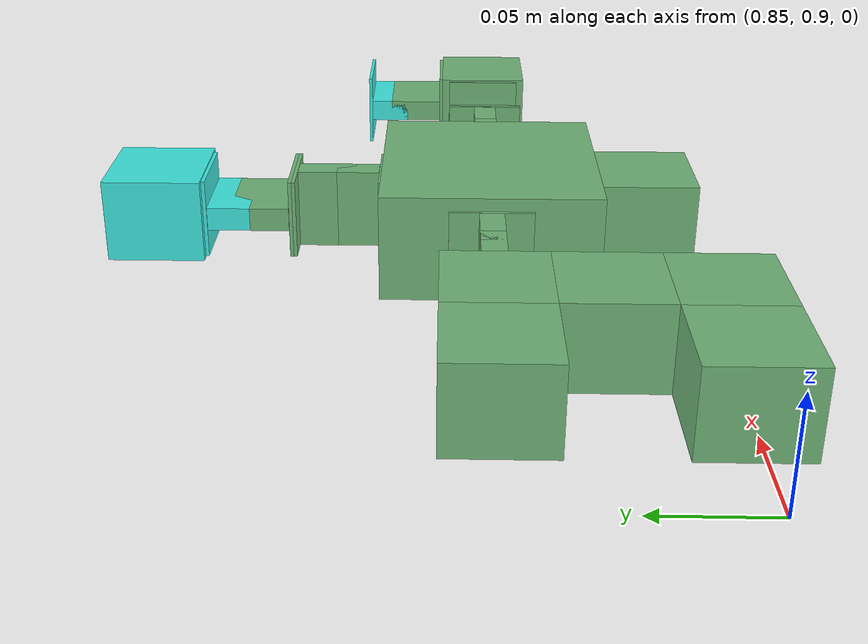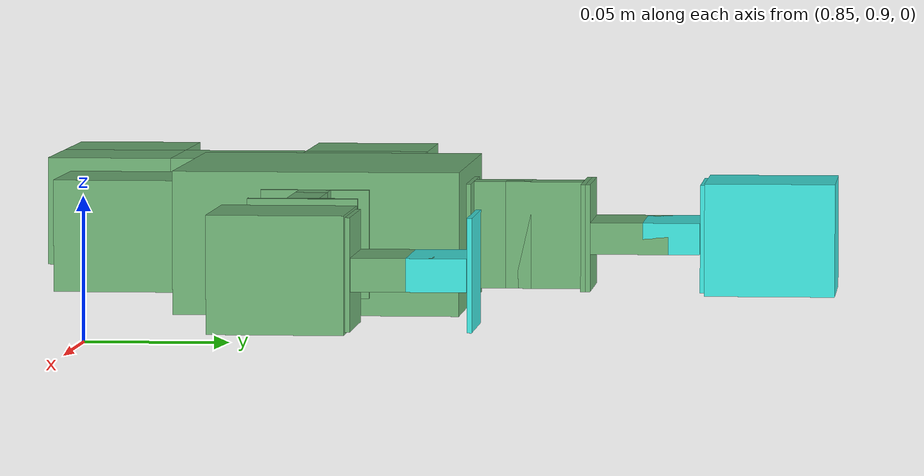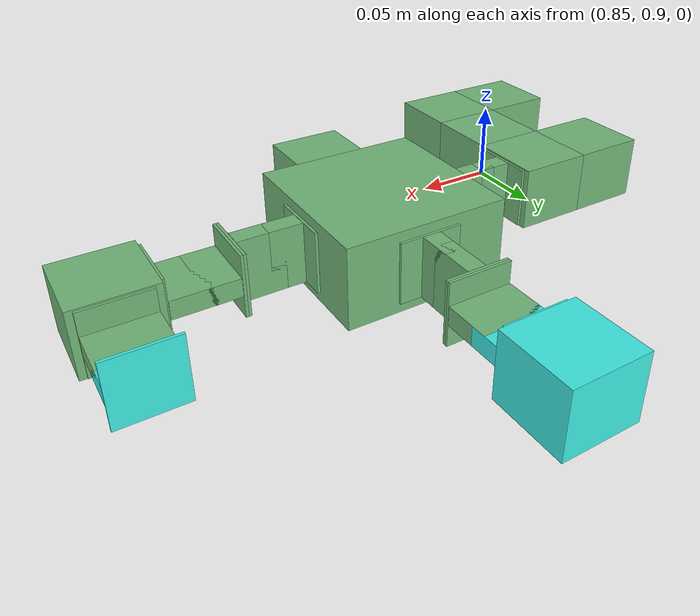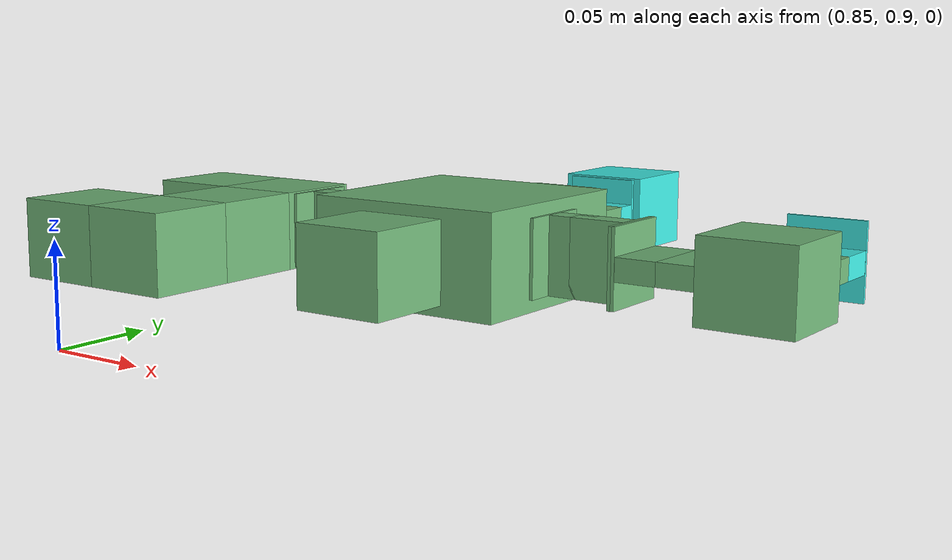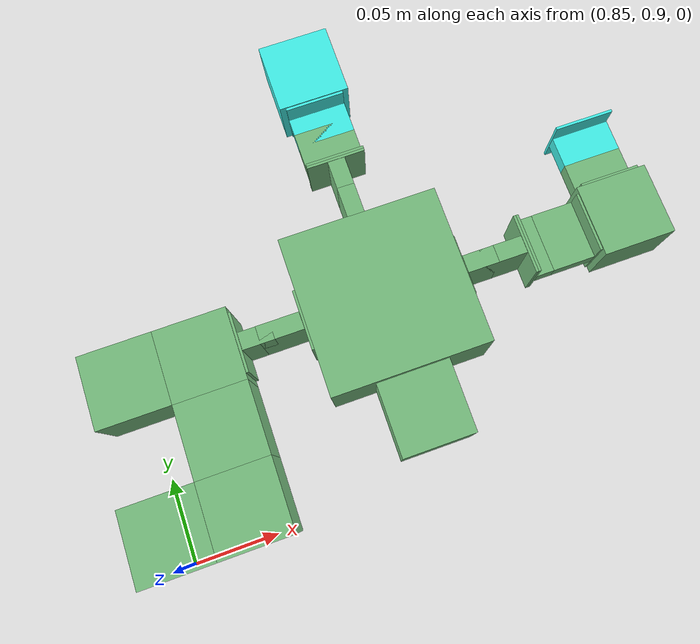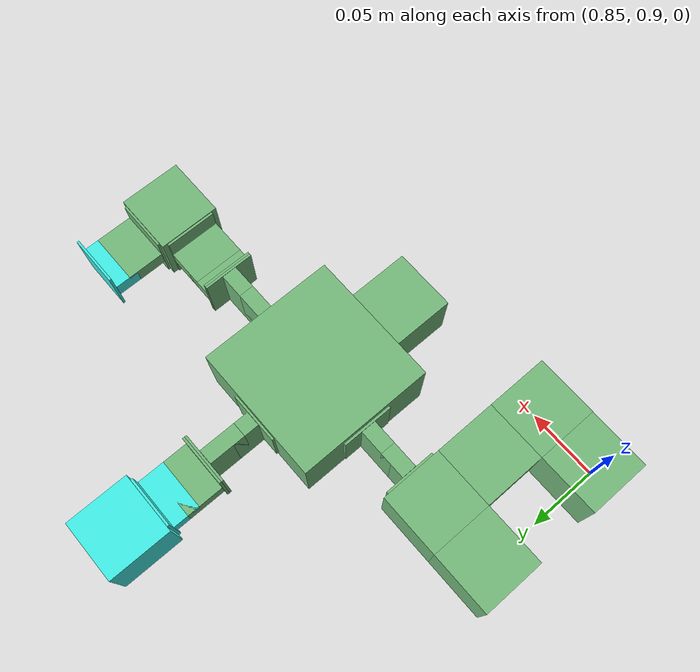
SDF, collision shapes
<?xml version="1.0"?>
<sdf version="1.5"><model name="gen__2"><pose>1.000000e+00 1.000000e+00 5.000000e-02 0.000000e+00 -0.000000e+00 0.000000e+00</pose>
<link name="link_component_node-0__box"><pose>-3.491176e-03 -2.120136e-03 -3.009157e-20 0.000000e+00 -0.000000e+00 0.000000e+00</pose>
<visual name="component_node-0__box_visual"><pose>3.491176e-03 2.120136e-03 3.009157e-20 0.000000e+00 -0.000000e+00 0.000000e+00</pose>
<material><ambient>0.45 0.72 0.48 1.00</ambient><diffuse>0.45 0.72 0.48 1.00</diffuse><specular>0.1 0.1 0.1 1.00</specular></material>
<geometry><mesh><uri>model://rg_robot/meshes/CoreComponent.dae</uri></mesh></geometry></visual>
<collision name="component_node-0__box_collision"><pose>3.491176e-03 2.120136e-03 3.009157e-20 0.000000e+00 -0.000000e+00 0.000000e+00</pose>
<surface><contact><ode><kd>3.333333e+06</kd><kp>9.000000e+04</kp></ode></contact>
<friction><ode><mu>1.000000e+00</mu>
<mu2>1.000000e+00</mu2>
<slip1>1.000000e-02</slip1>
<slip2>1.000000e-02</slip2></ode>
<bullet><friction>1.000000e+00</friction>
<friction2>1.000000e+00</friction2></bullet></friction></surface>
<geometry><box><size>9.000000e-02 9.000000e-02 4.500000e-02</size></box></geometry></collision>
<sensor type="imu" name="node-0-imu_sensor"><pose>3.491176e-03 2.120136e-03 3.009157e-20 0.000000e+00 -0.000000e+00 0.000000e+00</pose>
<update_rate>8.000000e+00</update_rate>
<always_on>1</always_on></sensor>
<visual name="component_node-1__box_visual"><pose>3.491176e-03 -6.337986e-02 3.009157e-20 0.000000e+00 -0.000000e+00 1.570796e+00</pose>
<material><ambient>0.50 0.65 0.96 1.00</ambient><diffuse>0.50 0.65 0.96 1.00</diffuse><specular>0.1 0.1 0.1 1.00</specular></material>
<geometry><mesh><uri>model://rg_robot/meshes/FixedBrick.dae</uri></mesh></geometry></visual>
<collision name="component_node-1__box_collision"><pose>3.491176e-03 -6.337986e-02 3.009157e-20 0.000000e+00 -0.000000e+00 1.570796e+00</pose>
<surface><contact><ode><kd>3.333333e+06</kd><kp>9.000000e+04</kp></ode></contact>
<friction><ode><mu>1.000000e+00</mu>
<mu2>1.000000e+00</mu2>
<slip1>1.000000e-02</slip1>
<slip2>1.000000e-02</slip2></ode>
<bullet><friction>1.000000e+00</friction>
<friction2>1.000000e+00</friction2></bullet></friction></surface>
<geometry><box><size>4.100000e-02 4.100000e-02 3.550000e-02</size></box></geometry></collision>
<visual name="component_node-2__root_visual"><pose>3.491176e-03 4.787014e-02 -1.364419e-19 1.570796e+00 3.330669e-16 1.570796e+00</pose>
<material><ambient>0.45 0.72 0.48 1.00</ambient><diffuse>0.45 0.72 0.48 1.00</diffuse><specular>0.1 0.1 0.1 1.00</specular></material>
<geometry><box><size>1.500000e-03 3.400000e-02 3.400000e-02</size></box></geometry></visual>
<collision name="component_node-2__root_collision"><pose>3.491176e-03 4.787014e-02 -1.364419e-19 1.570796e+00 3.330669e-16 1.570796e+00</pose>
<surface><contact><ode><kd>3.333333e+06</kd><kp>9.000000e+04</kp></ode></contact>
<friction><ode><mu>1.000000e+00</mu>
<mu2>1.000000e+00</mu2>
<slip1>1.000000e-02</slip1>
<slip2>1.000000e-02</slip2></ode>
<bullet><friction>1.000000e+00</friction>
<friction2>1.000000e+00</friction2></bullet></friction></surface>
<geometry><box><size>1.500000e-03 3.400000e-02 3.400000e-02</size></box></geometry></collision>
<visual name="component_node-2__frame_frame_visual"><pose>3.491176e-03 5.772014e-02 -2.323581e-18 1.570796e+00 3.330669e-16 1.570796e+00</pose>
<material><ambient>0.45 0.72 0.48 1.00</ambient><diffuse>0.45 0.72 0.48 1.00</diffuse><specular>0.1 0.1 0.1 1.00</specular></material>
<geometry><mesh><uri>model://rg_robot/meshes/ActiveHinge_Frame.dae</uri></mesh></geometry></visual>
<collision name="component_node-2__frame_collision"><pose>3.491176e-03 5.772014e-02 -2.323581e-18 1.570796e+00 3.330669e-16 1.570796e+00</pose>
<surface><contact><ode><kd>3.333333e+06</kd><kp>9.000000e+04</kp></ode></contact>
<friction><ode><mu>1.000000e+00</mu>
<mu2>1.000000e+00</mu2>
<slip1>1.000000e-02</slip1>
<slip2>1.000000e-02</slip2></ode>
<bullet><friction>1.000000e+00</friction>
<friction2>1.000000e+00</friction2></bullet></friction></surface>
<geometry><box><size>1.800000e-02 3.400000e-02 1.000000e-02</size></box></geometry></collision>
<visual name="component_node-5__root_visual"><pose>4.924118e-02 2.120136e-03 3.009157e-20 -1.570796e+00 0.000000e+00 0.000000e+00</pose>
<material><ambient>0.45 0.72 0.48 1.00</ambient><diffuse>0.45 0.72 0.48 1.00</diffuse><specular>0.1 0.1 0.1 1.00</specular></material>
<geometry><box><size>1.500000e-03 3.400000e-02 3.400000e-02</size></box></geometry></visual>
<collision name="component_node-5__root_collision"><pose>4.924118e-02 2.120136e-03 3.009157e-20 -1.570796e+00 0.000000e+00 0.000000e+00</pose>
<surface><contact><ode><kd>3.333333e+06</kd><kp>9.000000e+04</kp></ode></contact>
<friction><ode><mu>1.000000e+00</mu>
<mu2>1.000000e+00</mu2>
<slip1>1.000000e-02</slip1>
<slip2>1.000000e-02</slip2></ode>
<bullet><friction>1.000000e+00</friction>
<friction2>1.000000e+00</friction2></bullet></friction></surface>
<geometry><box><size>1.500000e-03 3.400000e-02 3.400000e-02</size></box></geometry></collision>
<visual name="component_node-5__frame_frame_visual"><pose>5.909118e-02 2.120136e-03 3.009157e-20 -1.570796e+00 0.000000e+00 0.000000e+00</pose>
<material><ambient>0.45 0.72 0.48 1.00</ambient><diffuse>0.45 0.72 0.48 1.00</diffuse><specular>0.1 0.1 0.1 1.00</specular></material>
<geometry><mesh><uri>model://rg_robot/meshes/ActiveHinge_Frame.dae</uri></mesh></geometry></visual>
<collision name="component_node-5__frame_collision"><pose>5.909118e-02 2.120136e-03 3.009157e-20 -1.570796e+00 0.000000e+00 0.000000e+00</pose>
<surface><contact><ode><kd>3.333333e+06</kd><kp>9.000000e+04</kp></ode></contact>
<friction><ode><mu>1.000000e+00</mu>
<mu2>1.000000e+00</mu2>
<slip1>1.000000e-02</slip1>
<slip2>1.000000e-02</slip2></ode>
<bullet><friction>1.000000e+00</friction>
<friction2>1.000000e+00</friction2></bullet></friction></surface>
<geometry><box><size>1.800000e-02 3.400000e-02 1.000000e-02</size></box></geometry></collision>
<collision name="component_node-9__tail_collision"><pose>-4.225882e-02 2.120136e-03 3.009157e-20 1.570796e+00 -0.000000e+00 0.000000e+00</pose>
<surface><contact><ode><kd>3.333333e+06</kd><kp>9.000000e+04</kp></ode></contact>
<friction><ode><mu>1.000000e+00</mu>
<mu2>1.000000e+00</mu2>
<slip1>1.000000e-02</slip1>
<slip2>1.000000e-02</slip2></ode>
<bullet><friction>1.000000e+00</friction>
<friction2>1.000000e+00</friction2></bullet></friction></surface>
<geometry><box><size>1.500000e-03 3.400000e-02 3.400000e-02</size></box></geometry></collision>
<visual name="component_node-9__servo_servo_visual"><pose>-5.535882e-02 2.120136e-03 3.009157e-20 1.570796e+00 -0.000000e+00 0.000000e+00</pose>
<material><ambient>0.45 0.72 0.48 1.00</ambient><diffuse>0.45 0.72 0.48 1.00</diffuse><specular>0.1 0.1 0.1 1.00</specular></material>
<geometry><mesh><uri>model://rg_robot/meshes/ActiveCardanHinge_Servo_Holder.dae</uri></mesh></geometry></visual>
<collision name="component_node-9__servo_collision"><pose>-5.535882e-02 2.120136e-03 3.009157e-20 1.570796e+00 -0.000000e+00 0.000000e+00</pose>
<surface><contact><ode><kd>3.333333e+06</kd><kp>9.000000e+04</kp></ode></contact>
<friction><ode><mu>1.000000e+00</mu>
<mu2>1.000000e+00</mu2>
<slip1>1.000000e-02</slip1>
<slip2>1.000000e-02</slip2></ode>
<bullet><friction>1.000000e+00</friction>
<friction2>1.000000e+00</friction2></bullet></friction></surface>
<geometry><box><size>2.450000e-02 3.400000e-02 1.000000e-02</size></box></geometry></collision>
<inertial><mass>1.326000e-01</mass><inertia><ixx>1.445517e-04</ixx><ixy>9.814744e-07</ixy><ixz>-7.751277e-23</ixz><iyy>1.452945e-04</iyy><iyz>1.920606e-22</iyz><izz>2.510864e-04</izz></inertia></inertial>
<self_collide>True</self_collide></link>
<link name="link_component_node-2__servo"><pose>5.003566e-35 8.270000e-02 -8.371082e-18 0.000000e+00 -0.000000e+00 0.000000e+00</pose>
<visual name="component_node-2__servo_servo_visual"><pose>-5.003566e-35 -1.385000e-02 3.075318e-18 1.570796e+00 3.330669e-16 1.570796e+00</pose>
<material><ambient>0.45 0.72 0.48 1.00</ambient><diffuse>0.45 0.72 0.48 1.00</diffuse><specular>0.1 0.1 0.1 1.00</specular></material>
<geometry><mesh><uri>model://rg_robot/meshes/ActiveCardanHinge_Servo_Holder.dae</uri></mesh></geometry></visual>
<collision name="component_node-2__servo_collision"><pose>-5.003566e-35 -1.385000e-02 3.075318e-18 1.570796e+00 3.330669e-16 1.570796e+00</pose>
<surface><contact><ode><kd>3.333333e+06</kd><kp>9.000000e+04</kp></ode></contact>
<friction><ode><mu>1.000000e+00</mu>
<mu2>1.000000e+00</mu2>
<slip1>1.000000e-02</slip1>
<slip2>1.000000e-02</slip2></ode>
<bullet><friction>1.000000e+00</friction>
<friction2>1.000000e+00</friction2></bullet></friction></surface>
<geometry><box><size>2.450000e-02 3.400000e-02 1.000000e-02</size></box></geometry></collision>
<collision name="component_node-2__tail_collision"><pose>-5.003566e-35 -7.500000e-04 1.665335e-19 1.570796e+00 3.330669e-16 1.570796e+00</pose>
<surface><contact><ode><kd>3.333333e+06</kd><kp>9.000000e+04</kp></ode></contact>
<friction><ode><mu>1.000000e+00</mu>
<mu2>1.000000e+00</mu2>
<slip1>1.000000e-02</slip1>
<slip2>1.000000e-02</slip2></ode>
<bullet><friction>1.000000e+00</friction>
<friction2>1.000000e+00</friction2></bullet></friction></surface>
<geometry><box><size>1.500000e-03 3.400000e-02 3.400000e-02</size></box></geometry></collision>
<collision name="component_node-3__tail_collision"><pose>-4.079120e-35 7.500000e-04 -1.665335e-19 3.141593e+00 -2.220446e-16 -1.570796e+00</pose>
<surface><contact><ode><kd>3.333333e+06</kd><kp>9.000000e+04</kp></ode></contact>
<friction><ode><mu>1.000000e+00</mu>
<mu2>1.000000e+00</mu2>
<slip1>1.000000e-02</slip1>
<slip2>1.000000e-02</slip2></ode>
<bullet><friction>1.000000e+00</friction>
<friction2>1.000000e+00</friction2></bullet></friction></surface>
<geometry><box><size>1.500000e-03 3.400000e-02 3.400000e-02</size></box></geometry></collision>
<visual name="component_node-3__servo_servo_visual"><pose>1.206788e-34 1.385000e-02 -3.075318e-18 3.141593e+00 -2.220446e-16 -1.570796e+00</pose>
<material><ambient>0.25 0.93 0.90 1.00</ambient><diffuse>0.25 0.93 0.90 1.00</diffuse><specular>0.1 0.1 0.1 1.00</specular></material>
<geometry><mesh><uri>model://rg_robot/meshes/ActiveCardanHinge_Servo_Holder.dae</uri></mesh></geometry></visual>
<collision name="component_node-3__servo_collision"><pose>1.206788e-34 1.385000e-02 -3.075318e-18 3.141593e+00 -2.220446e-16 -1.570796e+00</pose>
<surface><contact><ode><kd>3.333333e+06</kd><kp>9.000000e+04</kp></ode></contact>
<friction><ode><mu>1.000000e+00</mu>
<mu2>1.000000e+00</mu2>
<slip1>1.000000e-02</slip1>
<slip2>1.000000e-02</slip2></ode>
<bullet><friction>1.000000e+00</friction>
<friction2>1.000000e+00</friction2></bullet></friction></surface>
<geometry><box><size>2.450000e-02 3.400000e-02 1.000000e-02</size></box></geometry></collision>
<inertial><mass>3.200000e-02</mass><inertia><ixx>6.654347e-06</ixx><ixy>-2.543151e-22</ixy><ixz>-2.212489e-22</ixz><iyy>4.581333e-06</iyy><iyz>2.059863e-22</iyz><izz>6.654347e-06</izz></inertia></inertial>
<self_collide>True</self_collide></link>
<link name="link_component_node-3__frame"><pose>4.526505e-34 1.307875e-01 -1.295676e-17 0.000000e+00 -0.000000e+00 0.000000e+00</pose>
<visual name="component_node-3__frame_frame_visual"><pose>-1.186172e-34 -2.098750e-02 -1.431730e-18 3.141593e+00 -2.220446e-16 -1.570796e+00</pose>
<material><ambient>0.25 0.93 0.90 1.00</ambient><diffuse>0.25 0.93 0.90 1.00</diffuse><specular>0.1 0.1 0.1 1.00</specular></material>
<geometry><mesh><uri>model://rg_robot/meshes/ActiveHinge_Frame.dae</uri></mesh></geometry></visual>
<collision name="component_node-3__frame_collision"><pose>-1.186172e-34 -2.098750e-02 -1.431730e-18 3.141593e+00 -2.220446e-16 -1.570796e+00</pose>
<surface><contact><ode><kd>3.333333e+06</kd><kp>9.000000e+04</kp></ode></contact>
<friction><ode><mu>1.000000e+00</mu>
<mu2>1.000000e+00</mu2>
<slip1>1.000000e-02</slip1>
<slip2>1.000000e-02</slip2></ode>
<bullet><friction>1.000000e+00</friction>
<friction2>1.000000e+00</friction2></bullet></friction></surface>
<geometry><box><size>1.800000e-02 3.400000e-02 1.000000e-02</size></box></geometry></collision>
<visual name="component_node-3__root_visual"><pose>2.793436e-36 -1.113750e-02 -3.618869e-18 3.141593e+00 -2.220446e-16 -1.570796e+00</pose>
<material><ambient>0.25 0.93 0.90 1.00</ambient><diffuse>0.25 0.93 0.90 1.00</diffuse><specular>0.1 0.1 0.1 1.00</specular></material>
<geometry><box><size>1.500000e-03 3.400000e-02 3.400000e-02</size></box></geometry></visual>
<collision name="component_node-3__root_collision"><pose>2.793436e-36 -1.113750e-02 -3.618869e-18 3.141593e+00 -2.220446e-16 -1.570796e+00</pose>
<surface><contact><ode><kd>3.333333e+06</kd><kp>9.000000e+04</kp></ode></contact>
<friction><ode><mu>1.000000e+00</mu>
<mu2>1.000000e+00</mu2>
<slip1>1.000000e-02</slip1>
<slip2>1.000000e-02</slip2></ode>
<bullet><friction>1.000000e+00</friction>
<friction2>1.000000e+00</friction2></bullet></friction></surface>
<geometry><box><size>1.500000e-03 3.400000e-02 3.400000e-02</size></box></geometry></collision>
<visual name="component_node-4__box_visual"><pose>1.203790e-35 1.011250e-02 2.651976e-18 -3.140185e-16 3.140185e-16 -1.570796e+00</pose>
<material><ambient>0.50 0.65 0.96 1.00</ambient><diffuse>0.50 0.65 0.96 1.00</diffuse><specular>0.1 0.1 0.1 1.00</specular></material>
<geometry><mesh><uri>model://rg_robot/meshes/FixedBrick.dae</uri></mesh></geometry></visual>
<collision name="component_node-4__box_collision"><pose>1.203790e-35 1.011250e-02 2.651976e-18 -3.140185e-16 3.140185e-16 -1.570796e+00</pose>
<surface><contact><ode><kd>3.333333e+06</kd><kp>9.000000e+04</kp></ode></contact>
<friction><ode><mu>1.000000e+00</mu>
<mu2>1.000000e+00</mu2>
<slip1>1.000000e-02</slip1>
<slip2>1.000000e-02</slip2></ode>
<bullet><friction>1.000000e+00</friction>
<friction2>1.000000e+00</friction2></bullet></friction></surface>
<geometry><box><size>4.100000e-02 4.100000e-02 3.550000e-02</size></box></geometry></collision>
<inertial><mass>1.840000e-02</mass><inertia><ixx>5.658065e-06</ixx><ixy>-2.587799e-37</ixy><ixz>1.123048e-22</ixz><iyy>3.974329e-06</iyy><iyz>-8.485106e-22</iyz><izz>6.121302e-06</izz></inertia></inertial>
<self_collide>True</self_collide></link>
<joint type="revolute" name="joint_link_component_node-2__servo_link_component_node-3__frame"><pose>-1.802469e-34 -2.598750e-02 -3.215068e-19 3.141593e+00 -2.220446e-16 -1.570796e+00</pose>
<parent>link_component_node-2__servo</parent>
<child>link_component_node-3__frame</child>
<axis><xyz>0.000000e+00 1.000000e+00 0.000000e+00</xyz>
<use_parent_model_frame>0</use_parent_model_frame>
<limit><lower>-7.853982e-01</lower>
<upper>7.853982e-01</upper>
<effort>1.765800e-01</effort>
<velocity>5.235988e+00</velocity></limit></axis></joint>
<joint type="revolute" name="joint_link_component_node-2__servo_link_component_node-0__box"><pose>3.491176e-03 6.272014e-02 -3.433804e-18 1.570796e+00 2.220446e-16 1.570796e+00</pose>
<parent>link_component_node-2__servo</parent>
<child>link_component_node-0__box</child>
<axis><xyz>0.000000e+00 1.000000e+00 0.000000e+00</xyz>
<use_parent_model_frame>0</use_parent_model_frame>
<limit><lower>-7.853982e-01</lower>
<upper>7.853982e-01</upper>
<effort>1.765800e-01</effort>
<velocity>5.235988e+00</velocity></limit></axis></joint>
<link name="link_component_node-5__servo"><pose>7.807479e-02 0.000000e+00 0.000000e+00 0.000000e+00 -0.000000e+00 0.000000e+00</pose>
<visual name="component_node-5__servo_servo_visual"><pose>-9.224793e-03 0.000000e+00 0.000000e+00 -1.570796e+00 0.000000e+00 0.000000e+00</pose>
<material><ambient>0.45 0.72 0.48 1.00</ambient><diffuse>0.45 0.72 0.48 1.00</diffuse><specular>0.1 0.1 0.1 1.00</specular></material>
<geometry><mesh><uri>model://rg_robot/meshes/ActiveCardanHinge_Servo_Holder.dae</uri></mesh></geometry></visual>
<collision name="component_node-5__servo_collision"><pose>-9.224793e-03 0.000000e+00 0.000000e+00 -1.570796e+00 0.000000e+00 0.000000e+00</pose>
<surface><contact><ode><kd>3.333333e+06</kd><kp>9.000000e+04</kp></ode></contact>
<friction><ode><mu>1.000000e+00</mu>
<mu2>1.000000e+00</mu2>
<slip1>1.000000e-02</slip1>
<slip2>1.000000e-02</slip2></ode>
<bullet><friction>1.000000e+00</friction>
<friction2>1.000000e+00</friction2></bullet></friction></surface>
<geometry><box><size>2.450000e-02 3.400000e-02 1.000000e-02</size></box></geometry></collision>
<collision name="component_node-5__tail_collision"><pose>3.875207e-03 0.000000e+00 0.000000e+00 -1.570796e+00 0.000000e+00 0.000000e+00</pose>
<surface><contact><ode><kd>3.333333e+06</kd><kp>9.000000e+04</kp></ode></contact>
<friction><ode><mu>1.000000e+00</mu>
<mu2>1.000000e+00</mu2>
<slip1>1.000000e-02</slip1>
<slip2>1.000000e-02</slip2></ode>
<bullet><friction>1.000000e+00</friction>
<friction2>1.000000e+00</friction2></bullet></friction></surface>
<geometry><box><size>1.500000e-03 3.400000e-02 3.400000e-02</size></box></geometry></collision>
<visual name="component_node-6__root_visual"><pose>5.375207e-03 0.000000e+00 0.000000e+00 3.141593e+00 -0.000000e+00 0.000000e+00</pose>
<material><ambient>0.45 0.72 0.48 1.00</ambient><diffuse>0.45 0.72 0.48 1.00</diffuse><specular>0.1 0.1 0.1 1.00</specular></material>
<geometry><box><size>1.500000e-03 3.400000e-02 3.400000e-02</size></box></geometry></visual>
<collision name="component_node-6__root_collision"><pose>5.375207e-03 0.000000e+00 0.000000e+00 3.141593e+00 -0.000000e+00 0.000000e+00</pose>
<surface><contact><ode><kd>3.333333e+06</kd><kp>9.000000e+04</kp></ode></contact>
<friction><ode><mu>1.000000e+00</mu>
<mu2>1.000000e+00</mu2>
<slip1>1.000000e-02</slip1>
<slip2>1.000000e-02</slip2></ode>
<bullet><friction>1.000000e+00</friction>
<friction2>1.000000e+00</friction2></bullet></friction></surface>
<geometry><box><size>1.500000e-03 3.400000e-02 3.400000e-02</size></box></geometry></collision>
<visual name="component_node-6__frame_frame_visual"><pose>1.522521e-02 0.000000e+00 0.000000e+00 3.141593e+00 -0.000000e+00 0.000000e+00</pose>
<material><ambient>0.45 0.72 0.48 1.00</ambient><diffuse>0.45 0.72 0.48 1.00</diffuse><specular>0.1 0.1 0.1 1.00</specular></material>
<geometry><mesh><uri>model://rg_robot/meshes/ActiveHinge_Frame.dae</uri></mesh></geometry></visual>
<collision name="component_node-6__frame_collision"><pose>1.522521e-02 0.000000e+00 0.000000e+00 3.141593e+00 -0.000000e+00 0.000000e+00</pose>
<surface><contact><ode><kd>3.333333e+06</kd><kp>9.000000e+04</kp></ode></contact>
<friction><ode><mu>1.000000e+00</mu>
<mu2>1.000000e+00</mu2>
<slip1>1.000000e-02</slip1>
<slip2>1.000000e-02</slip2></ode>
<bullet><friction>1.000000e+00</friction>
<friction2>1.000000e+00</friction2></bullet></friction></surface>
<geometry><box><size>1.800000e-02 3.400000e-02 1.000000e-02</size></box></geometry></collision>
<inertial><mass>2.420000e-02</mass><inertia><ixx>3.764933e-06</ixx><ixy>0.000000e+00</ixy><ixz>0.000000e+00</ixz><iyy>4.062289e-06</iyy><iyz>-2.579270e-22</iyz><izz>3.375889e-06</izz></inertia></inertial>
<self_collide>True</self_collide></link>
<link name="link_component_node-6__servo"><pose>1.300493e-01 1.085071e-02 -1.096620e-17 0.000000e+00 -0.000000e+00 0.000000e+00</pose>
<visual name="component_node-6__servo_servo_visual"><pose>-2.349929e-02 -1.085071e-02 1.096620e-17 3.141593e+00 -0.000000e+00 0.000000e+00</pose>
<material><ambient>0.45 0.72 0.48 1.00</ambient><diffuse>0.45 0.72 0.48 1.00</diffuse><specular>0.1 0.1 0.1 1.00</specular></material>
<geometry><mesh><uri>model://rg_robot/meshes/ActiveCardanHinge_Servo_Holder.dae</uri></mesh></geometry></visual>
<collision name="component_node-6__servo_collision"><pose>-2.349929e-02 -1.085071e-02 1.096620e-17 3.141593e+00 -0.000000e+00 0.000000e+00</pose>
<surface><contact><ode><kd>3.333333e+06</kd><kp>9.000000e+04</kp></ode></contact>
<friction><ode><mu>1.000000e+00</mu>
<mu2>1.000000e+00</mu2>
<slip1>1.000000e-02</slip1>
<slip2>1.000000e-02</slip2></ode>
<bullet><friction>1.000000e+00</friction>
<friction2>1.000000e+00</friction2></bullet></friction></surface>
<geometry><box><size>2.450000e-02 3.400000e-02 1.000000e-02</size></box></geometry></collision>
<collision name="component_node-6__tail_collision"><pose>-1.039929e-02 -1.085071e-02 1.096620e-17 3.141593e+00 -0.000000e+00 0.000000e+00</pose>
<surface><contact><ode><kd>3.333333e+06</kd><kp>9.000000e+04</kp></ode></contact>
<friction><ode><mu>1.000000e+00</mu>
<mu2>1.000000e+00</mu2>
<slip1>1.000000e-02</slip1>
<slip2>1.000000e-02</slip2></ode>
<bullet><friction>1.000000e+00</friction>
<friction2>1.000000e+00</friction2></bullet></friction></surface>
<geometry><box><size>1.500000e-03 3.400000e-02 3.400000e-02</size></box></geometry></collision>
<visual name="component_node-7__box_visual"><pose>1.085071e-02 -1.085071e-02 1.096620e-17 1.010643e-15 -0.000000e+00 3.141593e+00</pose>
<material><ambient>0.25 0.93 0.90 1.00</ambient><diffuse>0.25 0.93 0.90 1.00</diffuse><specular>0.1 0.1 0.1 1.00</specular></material>
<geometry><mesh><uri>model://rg_robot/meshes/FixedBrick.dae</uri></mesh></geometry></visual>
<collision name="component_node-7__box_collision"><pose>1.085071e-02 -1.085071e-02 1.096620e-17 1.010643e-15 -0.000000e+00 3.141593e+00</pose>
<surface><contact><ode><kd>3.333333e+06</kd><kp>9.000000e+04</kp></ode></contact>
<friction><ode><mu>1.000000e+00</mu>
<mu2>1.000000e+00</mu2>
<slip1>1.000000e-02</slip1>
<slip2>1.000000e-02</slip2></ode>
<bullet><friction>1.000000e+00</friction>
<friction2>1.000000e+00</friction2></bullet></friction></surface>
<geometry><box><size>4.100000e-02 4.100000e-02 3.550000e-02</size></box></geometry></collision>
<collision name="component_node-8__tail_collision"><pose>1.085071e-02 1.039929e-02 -1.050997e-17 -3.141593e+00 -1.010643e-15 -1.570796e+00</pose>
<surface><contact><ode><kd>3.333333e+06</kd><kp>9.000000e+04</kp></ode></contact>
<friction><ode><mu>1.000000e+00</mu>
<mu2>1.000000e+00</mu2>
<slip1>1.000000e-02</slip1>
<slip2>1.000000e-02</slip2></ode>
<bullet><friction>1.000000e+00</friction>
<friction2>1.000000e+00</friction2></bullet></friction></surface>
<geometry><box><size>1.500000e-03 3.400000e-02 3.400000e-02</size></box></geometry></collision>
<visual name="component_node-8__servo_servo_visual"><pose>1.085071e-02 2.349929e-02 -2.374939e-17 -3.141593e+00 -1.010643e-15 -1.570796e+00</pose>
<material><ambient>0.25 0.93 0.90 1.00</ambient><diffuse>0.25 0.93 0.90 1.00</diffuse><specular>0.1 0.1 0.1 1.00</specular></material>
<geometry><mesh><uri>model://rg_robot/meshes/ActiveCardanHinge_Servo_Holder.dae</uri></mesh></geometry></visual>
<collision name="component_node-8__servo_collision"><pose>1.085071e-02 2.349929e-02 -2.374939e-17 -3.141593e+00 -1.010643e-15 -1.570796e+00</pose>
<surface><contact><ode><kd>3.333333e+06</kd><kp>9.000000e+04</kp></ode></contact>
<friction><ode><mu>1.000000e+00</mu>
<mu2>1.000000e+00</mu2>
<slip1>1.000000e-02</slip1>
<slip2>1.000000e-02</slip2></ode>
<bullet><friction>1.000000e+00</friction>
<friction2>1.000000e+00</friction2></bullet></friction></surface>
<geometry><box><size>2.450000e-02 3.400000e-02 1.000000e-02</size></box></geometry></collision>
<inertial><mass>4.220000e-02</mass><inertia><ixx>1.480326e-05</ixx><ixy>-4.968541e-06</ixy><ixz>4.924429e-21</ixz><iyy>1.480326e-05</iyy><iyz>9.669361e-21</iyz><izz>2.446677e-05</izz></inertia></inertial>
<self_collide>True</self_collide></link>
<link name="link_component_node-8__frame"><pose>1.409000e-01 5.600854e-02 -5.660464e-17 0.000000e+00 -0.000000e+00 0.000000e+00</pose>
<visual name="component_node-8__frame_frame_visual"><pose>0.000000e+00 -8.408537e-03 8.498029e-18 -3.141593e+00 -1.010643e-15 -1.570796e+00</pose>
<material><ambient>0.25 0.93 0.90 1.00</ambient><diffuse>0.25 0.93 0.90 1.00</diffuse><specular>0.1 0.1 0.1 1.00</specular></material>
<geometry><mesh><uri>model://rg_robot/meshes/ActiveHinge_Frame.dae</uri></mesh></geometry></visual>
<collision name="component_node-8__frame_collision"><pose>0.000000e+00 -8.408537e-03 8.498029e-18 -3.141593e+00 -1.010643e-15 -1.570796e+00</pose>
<surface><contact><ode><kd>3.333333e+06</kd><kp>9.000000e+04</kp></ode></contact>
<friction><ode><mu>1.000000e+00</mu>
<mu2>1.000000e+00</mu2>
<slip1>1.000000e-02</slip1>
<slip2>1.000000e-02</slip2></ode>
<bullet><friction>1.000000e+00</friction>
<friction2>1.000000e+00</friction2></bullet></friction></surface>
<geometry><box><size>1.800000e-02 3.400000e-02 1.000000e-02</size></box></geometry></collision>
<visual name="component_node-8__root_visual"><pose>0.000000e+00 1.441463e-03 -1.456805e-18 -3.141593e+00 -1.010643e-15 -1.570796e+00</pose>
<material><ambient>0.25 0.93 0.90 1.00</ambient><diffuse>0.25 0.93 0.90 1.00</diffuse><specular>0.1 0.1 0.1 1.00</specular></material>
<geometry><box><size>1.500000e-03 3.400000e-02 3.400000e-02</size></box></geometry></visual>
<collision name="component_node-8__root_collision"><pose>0.000000e+00 1.441463e-03 -1.456805e-18 -3.141593e+00 -1.010643e-15 -1.570796e+00</pose>
<surface><contact><ode><kd>3.333333e+06</kd><kp>9.000000e+04</kp></ode></contact>
<friction><ode><mu>1.000000e+00</mu>
<mu2>1.000000e+00</mu2>
<slip1>1.000000e-02</slip1>
<slip2>1.000000e-02</slip2></ode>
<bullet><friction>1.000000e+00</friction>
<friction2>1.000000e+00</friction2></bullet></friction></surface>
<geometry><box><size>1.500000e-03 3.400000e-02 3.400000e-02</size></box></geometry></collision>
<inertial><mass>8.200000e-03</mass><inertia><ixx>8.174347e-07</ixx><ixy>6.017547e-37</ixy><ixz>-1.293227e-23</ixz><iyy>1.474267e-06</iyy><iyz>-5.570987e-22</iyz><izz>9.230347e-07</izz></inertia></inertial>
<self_collide>True</self_collide></link>
<joint type="revolute" name="joint_link_component_node-6__servo_link_component_node-8__frame"><pose>-1.604917e-33 -1.340854e-02 1.355124e-17 -3.141593e+00 -1.010643e-15 -1.570796e+00</pose>
<parent>link_component_node-6__servo</parent>
<child>link_component_node-8__frame</child>
<axis><xyz>0.000000e+00 1.000000e+00 0.000000e+00</xyz>
<use_parent_model_frame>0</use_parent_model_frame>
<limit><lower>-7.853982e-01</lower>
<upper>7.853982e-01</upper>
<effort>1.765800e-01</effort>
<velocity>5.235988e+00</velocity></limit></axis></joint>
<joint type="revolute" name="joint_link_component_node-6__servo_link_component_node-5__servo"><pose>2.022521e-02 0.000000e+00 0.000000e+00 3.141593e+00 -0.000000e+00 0.000000e+00</pose>
<parent>link_component_node-6__servo</parent>
<child>link_component_node-5__servo</child>
<axis><xyz>0.000000e+00 1.000000e+00 0.000000e+00</xyz>
<use_parent_model_frame>0</use_parent_model_frame>
<limit><lower>-7.853982e-01</lower>
<upper>7.853982e-01</upper>
<effort>1.765800e-01</effort>
<velocity>5.235988e+00</velocity></limit></axis></joint>
<joint type="revolute" name="joint_link_component_node-5__servo_link_component_node-0__box"><pose>6.409118e-02 2.120136e-03 3.009157e-20 -1.570796e+00 0.000000e+00 0.000000e+00</pose>
<parent>link_component_node-5__servo</parent>
<child>link_component_node-0__box</child>
<axis><xyz>0.000000e+00 1.000000e+00 0.000000e+00</xyz>
<use_parent_model_frame>0</use_parent_model_frame>
<limit><lower>-7.853982e-01</lower>
<upper>7.853982e-01</upper>
<effort>1.765800e-01</effort>
<velocity>5.235988e+00</velocity></limit></axis></joint>
<link name="link_component_node-9__frame"><pose>-1.141853e-01 -3.532095e-02 -2.082768e-17 0.000000e+00 -0.000000e+00 0.000000e+00</pose>
<visual name="component_node-9__frame_frame_visual"><pose>4.208530e-02 3.532095e-02 2.082768e-17 1.570796e+00 -0.000000e+00 0.000000e+00</pose>
<material><ambient>0.45 0.72 0.48 1.00</ambient><diffuse>0.45 0.72 0.48 1.00</diffuse><specular>0.1 0.1 0.1 1.00</specular></material>
<geometry><mesh><uri>model://rg_robot/meshes/ActiveHinge_Frame.dae</uri></mesh></geometry></visual>
<collision name="component_node-9__frame_collision"><pose>4.208530e-02 3.532095e-02 2.082768e-17 1.570796e+00 -0.000000e+00 0.000000e+00</pose>
<surface><contact><ode><kd>3.333333e+06</kd><kp>9.000000e+04</kp></ode></contact>
<friction><ode><mu>1.000000e+00</mu>
<mu2>1.000000e+00</mu2>
<slip1>1.000000e-02</slip1>
<slip2>1.000000e-02</slip2></ode>
<bullet><friction>1.000000e+00</friction>
<friction2>1.000000e+00</friction2></bullet></friction></surface>
<geometry><box><size>1.800000e-02 3.400000e-02 1.000000e-02</size></box></geometry></collision>
<visual name="component_node-9__root_visual"><pose>3.223530e-02 3.532095e-02 2.082768e-17 1.570796e+00 -0.000000e+00 0.000000e+00</pose>
<material><ambient>0.45 0.72 0.48 1.00</ambient><diffuse>0.45 0.72 0.48 1.00</diffuse><specular>0.1 0.1 0.1 1.00</specular></material>
<geometry><box><size>1.500000e-03 3.400000e-02 3.400000e-02</size></box></geometry></visual>
<collision name="component_node-9__root_collision"><pose>3.223530e-02 3.532095e-02 2.082768e-17 1.570796e+00 -0.000000e+00 0.000000e+00</pose>
<surface><contact><ode><kd>3.333333e+06</kd><kp>9.000000e+04</kp></ode></contact>
<friction><ode><mu>1.000000e+00</mu>
<mu2>1.000000e+00</mu2>
<slip1>1.000000e-02</slip1>
<slip2>1.000000e-02</slip2></ode>
<bullet><friction>1.000000e+00</friction>
<friction2>1.000000e+00</friction2></bullet></friction></surface>
<geometry><box><size>1.500000e-03 3.400000e-02 3.400000e-02</size></box></geometry></collision>
<visual name="component_node-10__box_visual"><pose>1.098530e-02 3.532095e-02 1.894222e-17 -9.197389e-17 -5.360631e-16 1.570796e+00</pose>
<material><ambient>0.45 0.72 0.48 1.00</ambient><diffuse>0.45 0.72 0.48 1.00</diffuse><specular>0.1 0.1 0.1 1.00</specular></material>
<geometry><mesh><uri>model://rg_robot/meshes/FixedBrick.dae</uri></mesh></geometry></visual>
<collision name="component_node-10__box_collision"><pose>1.098530e-02 3.532095e-02 1.894222e-17 -9.197389e-17 -5.360631e-16 1.570796e+00</pose>
<surface><contact><ode><kd>3.333333e+06</kd><kp>9.000000e+04</kp></ode></contact>
<friction><ode><mu>1.000000e+00</mu>
<mu2>1.000000e+00</mu2>
<slip1>1.000000e-02</slip1>
<slip2>1.000000e-02</slip2></ode>
<bullet><friction>1.000000e+00</friction>
<friction2>1.000000e+00</friction2></bullet></friction></surface>
<geometry><box><size>4.100000e-02 4.100000e-02 3.550000e-02</size></box></geometry></collision>
<visual name="component_node-11__box_visual"><pose>-3.001470e-02 3.532095e-02 8.733908e-18 -4.059924e-16 -8.500816e-16 1.570796e+00</pose>
<material><ambient>0.79 0.15 0.68 1.00</ambient><diffuse>0.79 0.15 0.68 1.00</diffuse><specular>0.1 0.1 0.1 1.00</specular></material>
<geometry><mesh><uri>model://rg_robot/meshes/FixedBrick.dae</uri></mesh></geometry></visual>
<collision name="component_node-11__box_collision"><pose>-3.001470e-02 3.532095e-02 8.733908e-18 -4.059924e-16 -8.500816e-16 1.570796e+00</pose>
<surface><contact><ode><kd>3.333333e+06</kd><kp>9.000000e+04</kp></ode></contact>
<friction><ode><mu>1.000000e+00</mu>
<mu2>1.000000e+00</mu2>
<slip1>1.000000e-02</slip1>
<slip2>1.000000e-02</slip2></ode>
<bullet><friction>1.000000e+00</friction>
<friction2>1.000000e+00</friction2></bullet></friction></surface>
<geometry><box><size>4.100000e-02 4.100000e-02 3.550000e-02</size></box></geometry></collision>
<visual name="component_node-12__box_visual"><pose>1.098530e-02 -5.679054e-03 -1.150906e-18 -4.440892e-16 -5.473822e-48 3.141593e+00</pose>
<material><ambient>0.18 0.13 0.85 1.00</ambient><diffuse>0.18 0.13 0.85 1.00</diffuse><specular>0.1 0.1 0.1 1.00</specular></material>
<geometry><mesh><uri>model://rg_robot/meshes/FixedBrick.dae</uri></mesh></geometry></visual>
<collision name="component_node-12__box_collision"><pose>1.098530e-02 -5.679054e-03 -1.150906e-18 -4.440892e-16 -5.473822e-48 3.141593e+00</pose>
<surface><contact><ode><kd>3.333333e+06</kd><kp>9.000000e+04</kp></ode></contact>
<friction><ode><mu>1.000000e+00</mu>
<mu2>1.000000e+00</mu2>
<slip1>1.000000e-02</slip1>
<slip2>1.000000e-02</slip2></ode>
<bullet><friction>1.000000e+00</friction>
<friction2>1.000000e+00</friction2></bullet></friction></surface>
<geometry><box><size>4.100000e-02 4.100000e-02 3.550000e-02</size></box></geometry></collision>
<visual name="component_node-13__box_visual"><pose>1.098530e-02 -4.667905e-02 -1.935856e-17 -4.440892e-16 -0.000000e+00 3.141593e+00</pose>
<material><ambient>0.50 0.65 0.96 1.00</ambient><diffuse>0.50 0.65 0.96 1.00</diffuse><specular>0.1 0.1 0.1 1.00</specular></material>
<geometry><mesh><uri>model://rg_robot/meshes/FixedBrick.dae</uri></mesh></geometry></visual>
<collision name="component_node-13__box_collision"><pose>1.098530e-02 -4.667905e-02 -1.935856e-17 -4.440892e-16 -0.000000e+00 3.141593e+00</pose>
<surface><contact><ode><kd>3.333333e+06</kd><kp>9.000000e+04</kp></ode></contact>
<friction><ode><mu>1.000000e+00</mu>
<mu2>1.000000e+00</mu2>
<slip1>1.000000e-02</slip1>
<slip2>1.000000e-02</slip2></ode>
<bullet><friction>1.000000e+00</friction>
<friction2>1.000000e+00</friction2></bullet></friction></surface>
<geometry><box><size>4.100000e-02 4.100000e-02 3.550000e-02</size></box></geometry></collision>
<visual name="component_node-14__box_visual"><pose>-3.001470e-02 -4.667905e-02 -2.391048e-17 2.220446e-16 2.220446e-16 -1.570796e+00</pose>
<material><ambient>0.25 0.93 0.90 1.00</ambient><diffuse>0.25 0.93 0.90 1.00</diffuse><specular>0.1 0.1 0.1 1.00</specular></material>
<geometry><mesh><uri>model://rg_robot/meshes/FixedBrick.dae</uri></mesh></geometry></visual>
<collision name="component_node-14__box_collision"><pose>-3.001470e-02 -4.667905e-02 -2.391048e-17 2.220446e-16 2.220446e-16 -1.570796e+00</pose>
<surface><contact><ode><kd>3.333333e+06</kd><kp>9.000000e+04</kp></ode></contact>
<friction><ode><mu>1.000000e+00</mu>
<mu2>1.000000e+00</mu2>
<slip1>1.000000e-02</slip1>
<slip2>1.000000e-02</slip2></ode>
<bullet><friction>1.000000e+00</friction>
<friction2>1.000000e+00</friction2></bullet></friction></surface>
<geometry><box><size>4.100000e-02 4.100000e-02 3.550000e-02</size></box></geometry></collision>
<inertial><mass>5.920000e-02</mass><inertia><ixx>9.443428e-05</ixx><ixy>-1.132213e-05</ixy><ixz>-1.047975e-20</ixz><iyy>4.479388e-05</iyy><iyz>-3.751743e-20</iyz><izz>1.269362e-04</izz></inertia></inertial>
<self_collide>True</self_collide></link>
<joint type="revolute" name="joint_link_component_node-0__box_link_component_node-9__frame"><pose>4.708530e-02 3.532095e-02 2.082768e-17 1.570796e+00 -0.000000e+00 0.000000e+00</pose>
<parent>link_component_node-0__box</parent>
<child>link_component_node-9__frame</child>
<axis><xyz>0.000000e+00 1.000000e+00 0.000000e+00</xyz>
<use_parent_model_frame>0</use_parent_model_frame>
<limit><lower>-7.853982e-01</lower>
<upper>7.853982e-01</upper>
<effort>1.765800e-01</effort>
<velocity>5.235988e+00</velocity></limit></axis></joint>
<plugin name="robot_controller" filename="libtolrobotcontrol.so"><rv:robot_config xmlns:rv="https://github.com/ElteHupkes/revolve"><rv:update_rate>8.000000e+00</rv:update_rate>
<rv:brain><rv:neuron layer="input" type="Input" id="node-0-in-0" part_id="node-0" />
<rv:neuron layer="input" type="Input" id="node-0-in-1" part_id="node-0" />
<rv:neuron layer="input" type="Input" id="node-0-in-2" part_id="node-0" />
<rv:neuron layer="input" type="Input" id="node-0-in-3" part_id="node-0" />
<rv:neuron layer="input" type="Input" id="node-0-in-4" part_id="node-0" />
<rv:neuron layer="input" type="Input" id="node-0-in-5" part_id="node-0" />
<rv:neuron layer="output" type="Simple" id="node-2-out-0" part_id="node-2"><rv:bias>0.000000e+00</rv:bias>
<rv:gain>5.000000e-01</rv:gain></rv:neuron>
<rv:neuron layer="output" type="Simple" id="node-3-out-0" part_id="node-3"><rv:bias>0.000000e+00</rv:bias>
<rv:gain>5.000000e-01</rv:gain></rv:neuron>
<rv:neuron layer="output" type="Simple" id="node-5-out-0" part_id="node-5"><rv:bias>0.000000e+00</rv:bias>
<rv:gain>5.000000e-01</rv:gain></rv:neuron>
<rv:neuron layer="output" type="Simple" id="node-6-out-0" part_id="node-6"><rv:bias>0.000000e+00</rv:bias>
<rv:gain>5.000000e-01</rv:gain></rv:neuron>
<rv:neuron layer="output" type="Simple" id="node-8-out-0" part_id="node-8"><rv:bias>0.000000e+00</rv:bias>
<rv:gain>5.000000e-01</rv:gain></rv:neuron>
<rv:neuron layer="output" type="Simple" id="node-9-out-0" part_id="node-9"><rv:bias>0.000000e+00</rv:bias>
<rv:gain>5.000000e-01</rv:gain></rv:neuron></rv:brain>
<rv:sensor link="link_component_node-0__box" sensor="node-0-imu_sensor" type="imu" id="node-0__node-0-imu_sensor" part_id="node-0" />
<rv:motor joint="joint_link_component_node-2__servo_link_component_node-0__box" type="position" id="node-2__rotate" part_id="node-2"><rv:pid><rv:p>9.000000e-01</rv:p>
<rv:i>0.000000e+00</rv:i>
<rv:d>0.000000e+00</rv:d>
<rv:i_max>0.000000e+00</rv:i_max>
<rv:i_min>0.000000e+00</rv:i_min></rv:pid></rv:motor>
<rv:motor joint="joint_link_component_node-2__servo_link_component_node-3__frame" type="position" id="node-3__rotate" part_id="node-3"><rv:pid><rv:p>9.000000e-01</rv:p>
<rv:i>0.000000e+00</rv:i>
<rv:d>0.000000e+00</rv:d>
<rv:i_max>0.000000e+00</rv:i_max>
<rv:i_min>0.000000e+00</rv:i_min></rv:pid></rv:motor>
<rv:motor joint="joint_link_component_node-5__servo_link_component_node-0__box" type="position" id="node-5__rotate" part_id="node-5"><rv:pid><rv:p>9.000000e-01</rv:p>
<rv:i>0.000000e+00</rv:i>
<rv:d>0.000000e+00</rv:d>
<rv:i_max>0.000000e+00</rv:i_max>
<rv:i_min>0.000000e+00</rv:i_min></rv:pid></rv:motor>
<rv:motor joint="joint_link_component_node-6__servo_link_component_node-5__servo" type="position" id="node-6__rotate" part_id="node-6"><rv:pid><rv:p>9.000000e-01</rv:p>
<rv:i>0.000000e+00</rv:i>
<rv:d>0.000000e+00</rv:d>
<rv:i_max>0.000000e+00</rv:i_max>
<rv:i_min>0.000000e+00</rv:i_min></rv:pid></rv:motor>
<rv:motor joint="joint_link_component_node-6__servo_link_component_node-8__frame" type="position" id="node-8__rotate" part_id="node-8"><rv:pid><rv:p>9.000000e-01</rv:p>
<rv:i>0.000000e+00</rv:i>
<rv:d>0.000000e+00</rv:d>
<rv:i_max>0.000000e+00</rv:i_max>
<rv:i_min>0.000000e+00</rv:i_min></rv:pid></rv:motor>
<rv:motor joint="joint_link_component_node-0__box_link_component_node-9__frame" type="position" id="node-9__rotate" part_id="node-9"><rv:pid><rv:p>9.000000e-01</rv:p>
<rv:i>0.000000e+00</rv:i>
<rv:d>0.000000e+00</rv:d>
<rv:i_max>0.000000e+00</rv:i_max>
<rv:i_min>0.000000e+00</rv:i_min></rv:pid></rv:motor>
<rv:battery><rv:level>0.000000e+00</rv:level></rv:battery></rv:robot_config></plugin>
<static>0</static></model></sdf>
